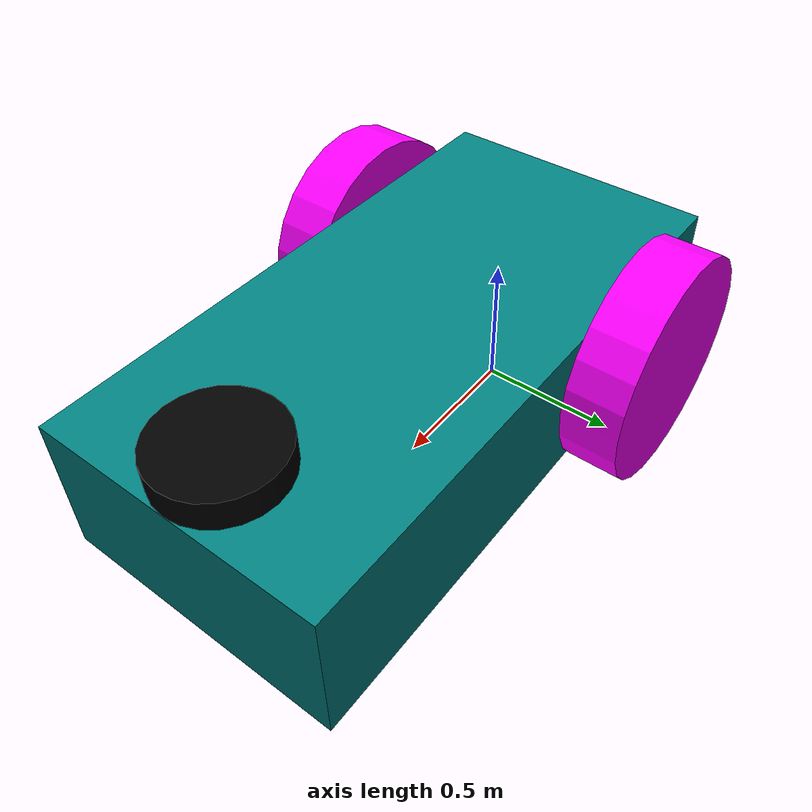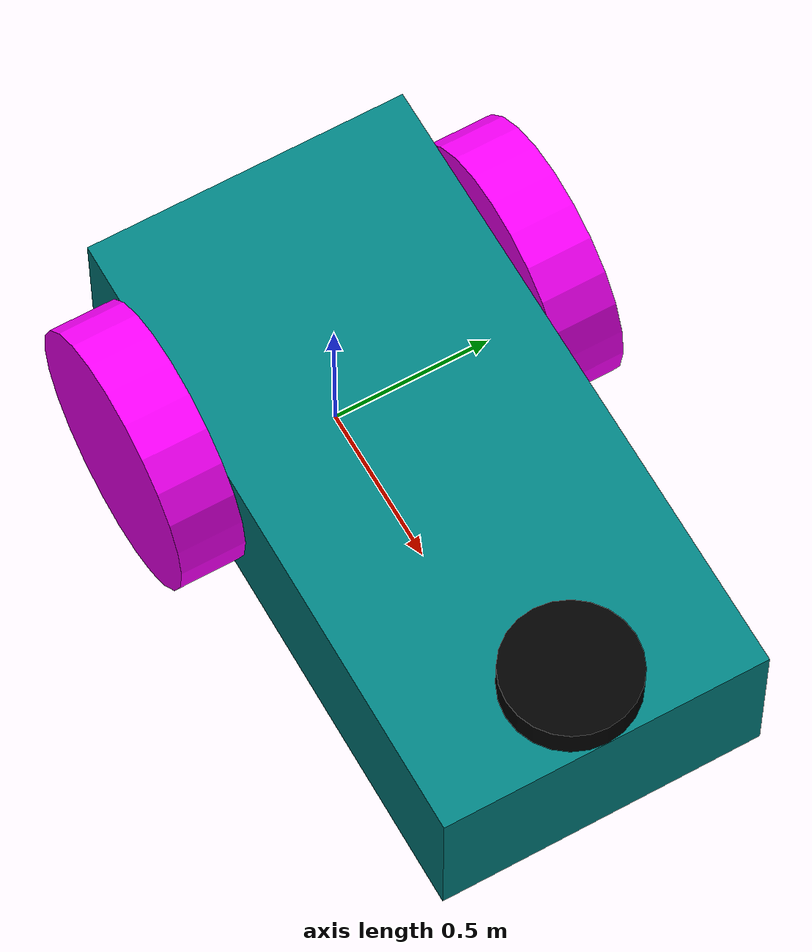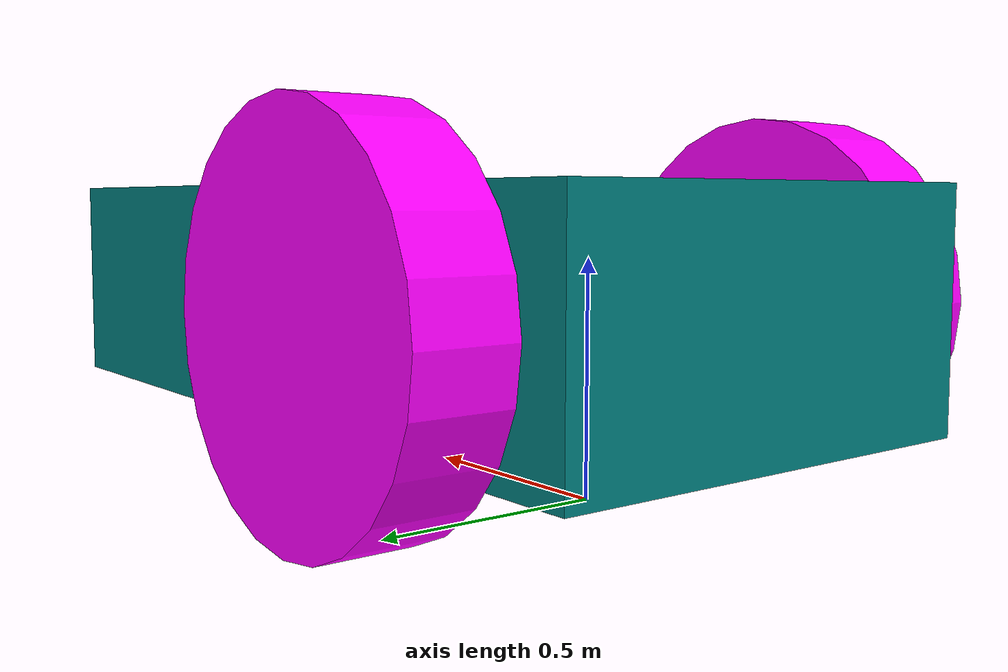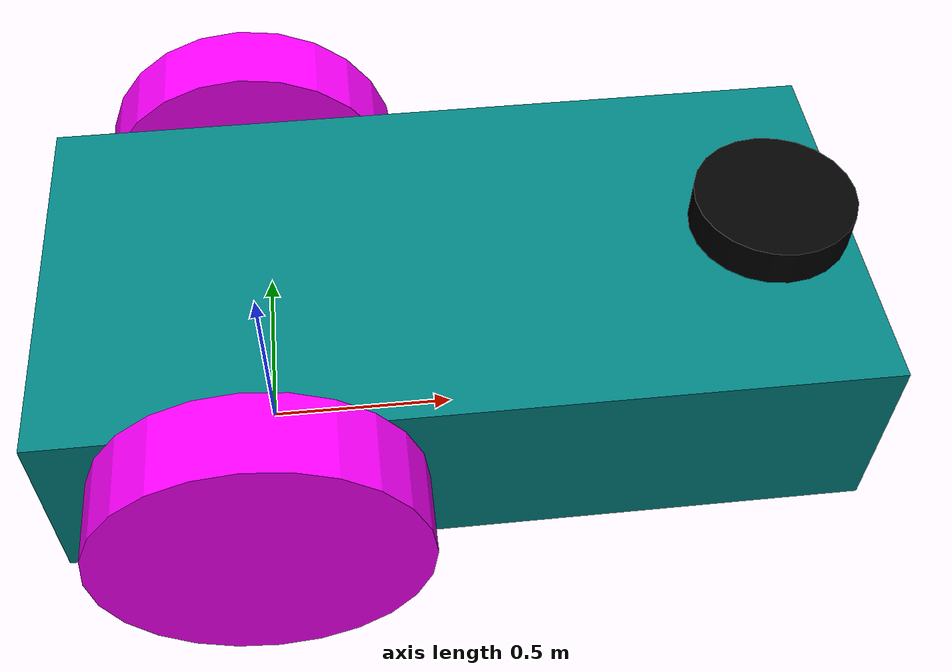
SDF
<?xml version="1.0" ?>
<sdf version="1.8">
    <model name='my_robot' canonical_link='chassis'>
            <link name='chassis'>
            <pose relative_to='__model__'>0.5 0 0.4 0 0 0</pose>
            <inertial> <!--inertial properties of the link mass, inertia matix-->
                <mass>1.14395</mass>
                <inertia>
                    <ixx>0.095329</ixx>
                    <ixy>0</ixy>
                    <ixz>0</ixz>
                    <iyy>0.381317</iyy>
                    <iyz>0</iyz>
                    <izz>0.476646</izz>
                </inertia>
            </inertial>
            <visual name='visual'>
                <geometry>
                    <box>
                        <size>2.0 1.0 0.5</size>
                    </box>
                </geometry>
                <!--let's add color to our link-->
                <material>
                    <ambient>0.0 0.5 0.5 1</ambient>
                    <diffuse>0.0 0.5 0.5 1</diffuse>
                    <specular>0.0 0.5 0.5 1</specular>
                </material>
            </visual>
            <collision name='collision'>
                <geometry>
                    <box>
                        <size>2.0 1.0 0.5</size>
                    </box>
                </geometry>
            </collision>
            <sensor name="imu_sensor" type="imu">
                <always_on>1</always_on>
                <update_rate>1</update_rate>
                <visualize>true</visualize>
                <topic>imu</topic>
            </sensor>
            <sensor name='gpu_lidar' type='gpu_lidar'>"
                <pose relative_to='lidar_frame'>0 0 0 0 0 0</pose>
                <topic>lidar</topic>
                <update_rate>10</update_rate>
                <ray>
                    <scan>
                        <horizontal>
                            <samples>640</samples>
                            <resolution>1</resolution>
                            <min_angle>-1.396263</min_angle>
                            <max_angle>1.396263</max_angle>
                        </horizontal>
                        <vertical>
                            <samples>1</samples>
                            <resolution>0.01</resolution>
                            <min_angle>0</min_angle>
                            <max_angle>0</max_angle>
                        </vertical>
                    </scan>
                    <range>
                        <min>0.08</min>
                        <max>25.0</max>
                        <resolution>0.01</resolution>
                    </range>
                </ray>
                <always_on>1</always_on>
                <visualize>true</visualize>
            </sensor>
            <sensor name='front_camera_sensor' type='camera'>
                <pose relative_to="chassis">1.05 0 0 0 0.0 0</pose>
                <topic>camera</topic>
                <update_rate>30</update_rate>
                <enable_metrics>false</enable_metrics>
                <camera name='camera'>
                    <pose>0 0 0 0 0 0</pose>
                    <horizontal_fov>1.3962600000000001</horizontal_fov>
                    <image>
                    <width>800</width>
                    <height>800</height>
                    <format>RGB_INT8</format>
                    <anti_aliasing>4</anti_aliasing>
                    </image>
                    <camera_info_topic>__default__</camera_info_topic>
                    <trigger_topic></trigger_topic>
                    <triggered>false</triggered>
                    <clip>
                    <near>0.02</near>
                    <far>300</far>
                    </clip>
                    <save enabled='false'>
                    <path>__default__</path>
                    </save>
                    <visibility_mask>4294967295</visibility_mask>
                    <noise>
                    <type>gaussian</type>
                    <mean>0</mean>
                    <stddev>0.0070000000000000001</stddev>
                    </noise>
                    <distortion>
                    <k1>0</k1>
                    <k2>0</k2>
                    <k3>0</k3>
                    <p1>0</p1>
                    <p2>0</p2>
                    <center>0.5 0.5</center>
                    </distortion>
                    <lens>
                    <type>stereographic</type>
                    <scale_to_hfov>true</scale_to_hfov>
                    <cutoff_angle>1.5708</cutoff_angle>
                    <env_texture_size>256</env_texture_size>
                    </lens>
                    <optical_frame_id></optical_frame_id>
                </camera>
            </sensor>
        </link>
        <link name='left_wheel'>
            <pose relative_to="chassis">-0.5 0.6 0 -1.5707 0 0</pose>
            <inertial>
                <mass>1</mass>
                <inertia>
                    <ixx>0.043333</ixx>
                    <ixy>0</ixy>
                    <ixz>0</ixz>
                    <iyy>0.043333</iyy>
                    <iyz>0</iyz>
                    <izz>0.08</izz>
                </inertia>
            </inertial>
            <visual name='visual'>
                <geometry>
                    <cylinder>
                        <radius>0.4</radius>
                        <length>0.2</length>
                    </cylinder>
                </geometry>
                <material>
                    <ambient>1.0 0.0 1.0 1</ambient>
                    <diffuse>1.0 0.0 1.0 1</diffuse>
                    <specular>1.0 0.0 1.0 1</specular>
                </material>
            </visual>
            <collision name='collision'>
                <geometry>
                    <cylinder>
                        <radius>0.4</radius>
                        <length>0.2</length>
                    </cylinder>
                </geometry>
            </collision>
        </link>
        <link name='right_wheel'>
            <pose relative_to="chassis">-0.5 -0.6 0 -1.5707 0 0</pose> <!--angles are in radian-->
            <inertial>
                <mass>1</mass>
                <inertia>
                    <ixx>0.043333</ixx>
                    <ixy>0</ixy>
                    <ixz>0</ixz>
                    <iyy>0.043333</iyy>
                    <iyz>0</iyz>
                    <izz>0.08</izz>
                </inertia>
            </inertial>
            <visual name='visual'>
                <geometry>
                    <cylinder>
                        <radius>0.4</radius>
                        <length>0.2</length>
                    </cylinder>
                </geometry>
                <material>
                    <ambient>1.0 0.0 1.0 1</ambient>
                    <diffuse>1.0 0.0 1.0 1</diffuse>
                    <specular>1.0 0.0 1.0 1</specular>
                </material>
            </visual>
            <collision name='collision'>
                <geometry>
                    <cylinder>
                        <radius>0.4</radius>
                        <length>0.2</length>
                    </cylinder>
                </geometry>
            </collision>
        </link>
        <frame name="caster_frame" attached_to='chassis'>
            <pose>0.8 0 -0.2 0 0 0</pose>
        </frame>
        <link name='caster'>
            <pose relative_to='caster_frame'/>
            <inertial>
                <mass>1</mass>
                <inertia>
                    <ixx>0.016</ixx>
                    <ixy>0</ixy>
                    <ixz>0</ixz>
                    <iyy>0.016</iyy>
                    <iyz>0</iyz>
                    <izz>0.016</izz>
                </inertia>
            </inertial>
            <visual name='visual'>
                <geometry>
                    <sphere>
                        <radius>0.2</radius>
                    </sphere>
                </geometry>
                <material>
                    <ambient>1.0 1 0.0 1</ambient>
                    <diffuse>1.0 1 0.0 1</diffuse>
                    <specular>1.0 1 0.0 1</specular>
                </material>
            </visual>
            <collision name='collision'>
                <geometry>
                    <sphere>
                        <radius>0.2</radius>
                    </sphere>
                </geometry>
            </collision>
        </link>
        <joint name='left_wheel_joint' type='revolute'>
            <pose relative_to='left_wheel'/>
            <parent>chassis</parent>
            <child>left_wheel</child>
            <axis>
                <xyz expressed_in='__model__'>0 1 0</xyz> <!--can be defined as any frame or even arbitrary frames-->
                <limit>
                    <lower>-1.79769e+308</lower>    <!--negative infinity-->
                    <upper>1.79769e+308</upper>     <!--positive infinity-->
                </limit>
            </axis>
        </joint>
        <joint name='right_wheel_joint' type='revolute'>
            <pose relative_to='right_wheel'/>
            <parent>chassis</parent>
            <child>right_wheel</child>
            <axis>
                <xyz expressed_in='__model__'>0 1 0</xyz>
                <limit>
                    <lower>-1.79769e+308</lower>    <!--negative infinity-->
                    <upper>1.79769e+308</upper>     <!--positive infinity-->
                </limit>
            </axis>
        </joint>
        <joint name='caster_wheel' type='ball'>
            <parent>chassis</parent>
            <child>caster</child>
        </joint>
        <link name='lidar_vis'>
            <pose relative_to="chassis">0.8 0 0.3 0 0 0</pose>
            <visual name='visual'>
                <geometry>
                    <cylinder>
                        <radius>0.2</radius>
                        <length>0.1</length>
                    </cylinder>
                </geometry>
                <material>
                    <ambient>0 0 0 1</ambient>
                    <diffuse>0 0 0 1</diffuse>
                    <specular>0 0 0 1</specular>
                </material>
            </visual>
        </link>
        <joint name='lidar_vis_joint' type='fixed'>
            <pose relative_to='lidar_vis'/>
            <parent>chassis</parent>
            <child>lidar_vis</child>
        </joint>
        <frame name="lidar_frame" attached_to='chassis'>
            <pose>0.8 0 0.5 0 0 0</pose>
        </frame>
        <plugin
            filename="libignition-gazebo-diff-drive-system.so"
            name="ignition::gazebo::systems::DiffDrive">
            <left_joint>left_wheel_joint</left_joint>
            <right_joint>right_wheel_joint</right_joint>
            <wheel_separation>1.2</wheel_separation>
            <wheel_radius>0.4</wheel_radius>
            <odom_publish_frequency>1</odom_publish_frequency>
            <topic>cmd_vel</topic>
        </plugin>
        <plugin filename="libignition-gazebo-triggered-publisher-system.so"
                name="ignition::gazebo::systems::TriggeredPublisher">
            <input type="ignition.msgs.Int32" topic="/keyboard/keypress">
                <match field="data">87</match>
            </input>
            <output type="ignition.msgs.Twist" topic="/cmd_vel">
                linear: {x: 2.0}, angular: {z: 0.0}
            </output>
        </plugin>
                    <plugin filename="libignition-gazebo-triggered-publisher-system.so"
                name="ignition::gazebo::systems::TriggeredPublisher">
            <input type="ignition.msgs.Int32" topic="/keyboard/keypress">
                <match field="data">83</match>
            </input>
            <output type="ignition.msgs.Twist" topic="/cmd_vel">
                linear: {x: -1.0}, angular: {z: 0.0}
            </output>
        </plugin>
                    <plugin filename="libignition-gazebo-triggered-publisher-system.so"
                name="ignition::gazebo::systems::TriggeredPublisher">
            <input type="ignition.msgs.Int32" topic="/keyboard/keypress">
                <match field="data">65</match>
            </input>
            <output type="ignition.msgs.Twist" topic="/cmd_vel">
                linear: {x: 0.0}, angular: {z: 0.5}
            </output>
        </plugin>
        <plugin filename="libignition-gazebo-triggered-publisher-system.so"
                name="ignition::gazebo::systems::TriggeredPublisher">
            <input type="ignition.msgs.Int32" topic="/keyboard/keypress">
                <match field="data">68</match>
            </input>
            <output type="ignition.msgs.Twist" topic="/cmd_vel">
                linear: {x: 0.0}, angular: {z: -0.5}
            </output>
        </plugin>
    </model>
</sdf>
